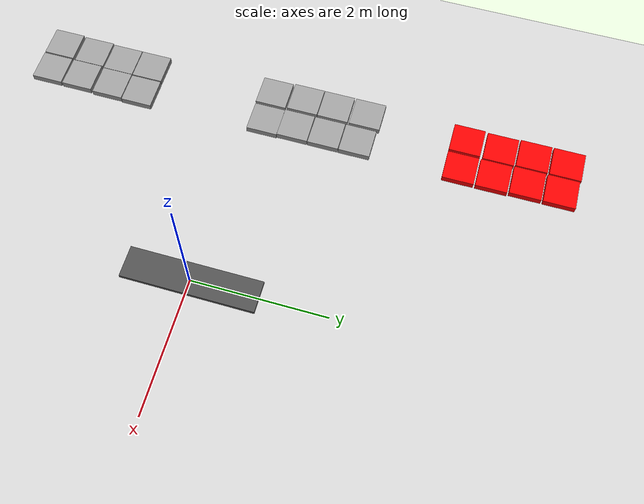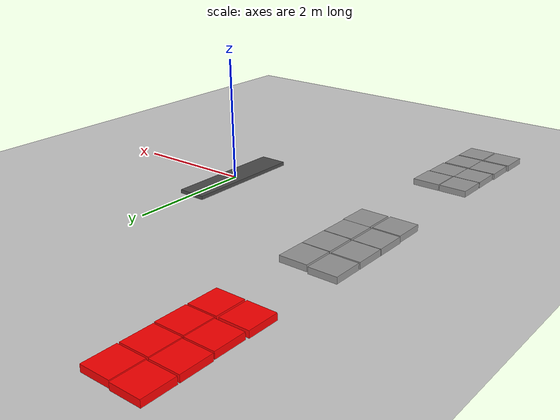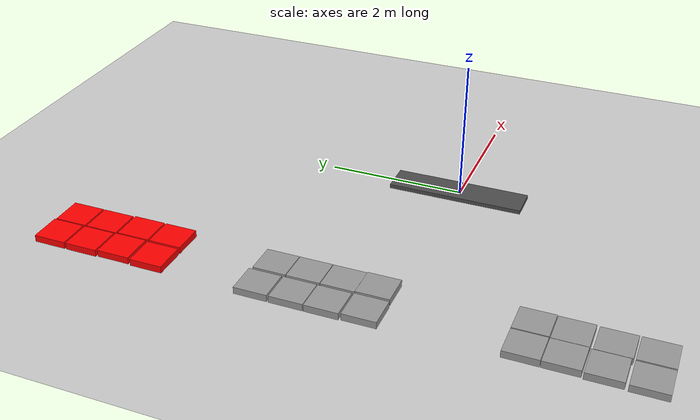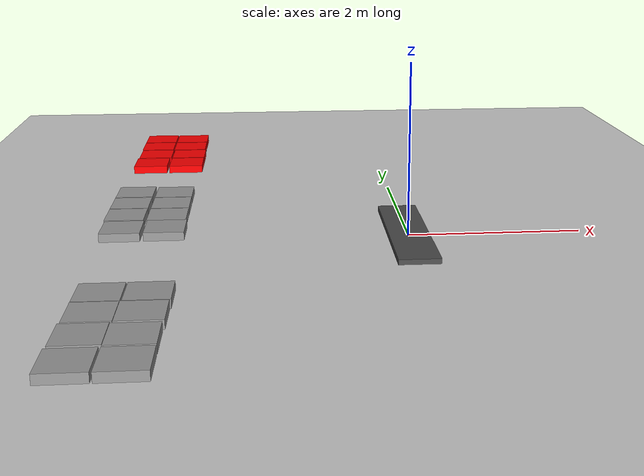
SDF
<sdf version="1.6">
 <world name="default">
  <light name="sun" type="directional">
   <pose>0 0 10 0 -0 0</pose>
   <diffuse>0.8 0.8 0.8 1</diffuse>
   <specular>0.1 0.1 0.1 1</specular>
   <attenuation>
    <range>1000</range>
    <constant>0.9</constant>
    <linear>0.01</linear>
    <quadratic>0.001</quadratic>
   </attenuation>
   <direction>-0.5 0.5 -1</direction>
  </light>
  <model name="ground_plane">
   <static>1</static>
   <link name="link">
    <collision name="collision">
     <geometry><plane><normal>0 0 1</normal><size>100 100</size></plane></geometry>
     <surface><friction><ode><mu>100</mu><mu2>50</mu2></ode></friction></surface>
    </collision>
    <visual name="visual">
     <cast_shadows>0</cast_shadows>
     <geometry><plane><normal>0 0 1</normal><size>100 100</size></plane></geometry>
     <material>
      <script><uri>file://media/materials/scripts/gazebo.material</uri><name>Gazebo/Grey</name></script>
     </material>
    </visual>
   </link>
  </model>
  <gravity>0 0 -9.8</gravity>
  <magnetic_field>6e-06 2.3e-05 -4.2e-05</magnetic_field>
  <atmosphere type="adiabatic"/>
  <physics name="default_physics" default="0" type="ode">
   <max_step_size>0.001</max_step_size>
   <real_time_factor>1</real_time_factor>
   <real_time_update_rate>1000</real_time_update_rate>
  </physics>
  <scene><ambient>0.4 0.4 0.4 1</ambient><background>0.7 0.7 0.7 1</background><shadows>1</shadows></scene>
  <spherical_coordinates>
   <surface_model>EARTH_WGS84</surface_model>
   <latitude_deg>0</latitude_deg>
   <longitude_deg>0</longitude_deg>
   <elevation>0</elevation>
   <heading_deg>0</heading_deg>
  </spherical_coordinates>
  <model name="unit_box_2_0">
   <link name="link">
    <inertial>
     <mass>1</mass>
     <inertia>
      <ixx>0.166667</ixx>
      <ixy>0</ixy>
      <ixz>0</ixz>
      <iyy>0.166667</iyy>
      <iyz>0</iyz>
      <izz>0.166667</izz>
     </inertia>
    </inertial>
    <visual name="visual">
     <geometry><box><size>0.459441 0.470843 0.100133</size></box></geometry>
     <material>
      <script><name>Gazebo/Grey</name><uri>file://media/materials/scripts/gazebo.material</uri></script>
      <ambient>0 0 0 1</ambient>
      <diffuse>0 0 0 1</diffuse>
      <specular>0 0 0 1</specular>
      <emissive>0 0 0 1</emissive>
      <shader type="vertex"><normal_map>__default__</normal_map></shader>
     </material>
    </visual>
    <collision name="collision">
     <geometry><box><size>0.459441 0.470843 0.100133</size></box></geometry>
     <surface>
      <friction>
       <ode><mu>1</mu><mu2>1</mu2><fdir1>0 0 0</fdir1><slip1>0</slip1><slip2>0</slip2></ode>
       <torsional>
        <coefficient>1</coefficient>
        <patch_radius>0</patch_radius>
        <surface_radius>0</surface_radius>
        <use_patch_radius>1</use_patch_radius>
        <ode><slip>0</slip></ode>
       </torsional>
      </friction>
      <bounce><restitution_coefficient>0</restitution_coefficient><threshold>1e+06</threshold></bounce>
      <contact>
       <collide_without_contact>0</collide_without_contact>
       <collide_without_contact_bitmask>1</collide_without_contact_bitmask>
       <collide_bitmask>1</collide_bitmask>
       <ode>
        <soft_cfm>0</soft_cfm>
        <soft_erp>0.2</soft_erp>
        <kp>1e+13</kp>
        <kd>1</kd>
        <max_vel>0.01</max_vel>
        <min_depth>0</min_depth>
       </ode>
       <bullet>
        <split_impulse>1</split_impulse>
        <split_impulse_penetration_threshold>-0.01</split_impulse_penetration_threshold>
        <soft_cfm>0</soft_cfm>
        <soft_erp>0.2</soft_erp>
        <kp>1e+13</kp>
        <kd>1</kd>
       </bullet>
      </contact>
     </surface>
    </collision>
   </link>
   <static>0</static>
   <pose>-2.75989 -1.76543 0.050066 0 -0 0</pose>
  </model>
  <model name="unit_box_2_1">
   <link name="link">
    <inertial>
     <mass>1</mass>
     <inertia>
      <ixx>0.166667</ixx>
      <ixy>0</ixy>
      <ixz>0</ixz>
      <iyy>0.166667</iyy>
      <iyz>0</iyz>
      <izz>0.166667</izz>
     </inertia>
    </inertial>
    <visual name="visual">
     <geometry><box><size>0.459441 0.470843 0.100133</size></box></geometry>
     <material>
      <script><name>Gazebo/Grey</name><uri>file://media/materials/scripts/gazebo.material</uri></script>
      <ambient>0 0 0 1</ambient>
      <diffuse>0 0 0 1</diffuse>
      <specular>0 0 0 1</specular>
      <emissive>0 0 0 1</emissive>
      <shader type="vertex"><normal_map>__default__</normal_map></shader>
     </material>
    </visual>
    <collision name="collision">
     <geometry><box><size>0.459441 0.470843 0.100133</size></box></geometry>
     <surface>
      <friction>
       <ode><mu>1</mu><mu2>1</mu2><fdir1>0 0 0</fdir1><slip1>0</slip1><slip2>0</slip2></ode>
       <torsional>
        <coefficient>1</coefficient>
        <patch_radius>0</patch_radius>
        <surface_radius>0</surface_radius>
        <use_patch_radius>1</use_patch_radius>
        <ode><slip>0</slip></ode>
       </torsional>
      </friction>
      <bounce><restitution_coefficient>0</restitution_coefficient><threshold>1e+06</threshold></bounce>
      <contact>
       <collide_without_contact>0</collide_without_contact>
       <collide_without_contact_bitmask>1</collide_without_contact_bitmask>
       <collide_bitmask>1</collide_bitmask>
       <ode>
        <soft_cfm>0</soft_cfm>
        <soft_erp>0.2</soft_erp>
        <kp>1e+13</kp>
        <kd>1</kd>
        <max_vel>0.01</max_vel>
        <min_depth>0</min_depth>
       </ode>
       <bullet>
        <split_impulse>1</split_impulse>
        <split_impulse_penetration_threshold>-0.01</split_impulse_penetration_threshold>
        <soft_cfm>0</soft_cfm>
        <soft_erp>0.2</soft_erp>
        <kp>1e+13</kp>
        <kd>1</kd>
       </bullet>
      </contact>
     </surface>
    </collision>
   </link>
   <static>0</static>
   <pose>-2.77255 -2.24823 0.050066 0 -0 0</pose>
  </model>
  <model name="unit_box_2_2">
   <link name="link">
    <inertial>
     <mass>1</mass>
     <inertia>
      <ixx>0.166667</ixx>
      <ixy>0</ixy>
      <ixz>0</ixz>
      <iyy>0.166667</iyy>
      <iyz>0</iyz>
      <izz>0.166667</izz>
     </inertia>
    </inertial>
    <visual name="visual">
     <geometry><box><size>0.459441 0.470843 0.100133</size></box></geometry>
     <material>
      <script><name>Gazebo/Grey</name><uri>file://media/materials/scripts/gazebo.material</uri></script>
      <ambient>0 0 0 1</ambient>
      <diffuse>0 0 0 1</diffuse>
      <specular>0 0 0 1</specular>
      <emissive>0 0 0 1</emissive>
      <shader type="vertex"><normal_map>__default__</normal_map></shader>
     </material>
    </visual>
    <collision name="collision">
     <geometry><box><size>0.459441 0.470843 0.100133</size></box></geometry>
     <surface>
      <friction>
       <ode><mu>1</mu><mu2>1</mu2><fdir1>0 0 0</fdir1><slip1>0</slip1><slip2>0</slip2></ode>
       <torsional>
        <coefficient>1</coefficient>
        <patch_radius>0</patch_radius>
        <surface_radius>0</surface_radius>
        <use_patch_radius>1</use_patch_radius>
        <ode><slip>0</slip></ode>
       </torsional>
      </friction>
      <bounce><restitution_coefficient>0</restitution_coefficient><threshold>1e+06</threshold></bounce>
      <contact>
       <collide_without_contact>0</collide_without_contact>
       <collide_without_contact_bitmask>1</collide_without_contact_bitmask>
       <collide_bitmask>1</collide_bitmask>
       <ode>
        <soft_cfm>0</soft_cfm>
        <soft_erp>0.2</soft_erp>
        <kp>1e+13</kp>
        <kd>1</kd>
        <max_vel>0.01</max_vel>
        <min_depth>0</min_depth>
       </ode>
       <bullet>
        <split_impulse>1</split_impulse>
        <split_impulse_penetration_threshold>-0.01</split_impulse_penetration_threshold>
        <soft_cfm>0</soft_cfm>
        <soft_erp>0.2</soft_erp>
        <kp>1e+13</kp>
        <kd>1</kd>
       </bullet>
      </contact>
     </surface>
    </collision>
   </link>
   <static>0</static>
   <pose>-2.78916 -2.75879 0.050066 0 -0 0</pose>
  </model>
  <model name="unit_box_2_3">
   <link name="link">
    <inertial>
     <mass>1</mass>
     <inertia>
      <ixx>0.166667</ixx>
      <ixy>0</ixy>
      <ixz>0</ixz>
      <iyy>0.166667</iyy>
      <iyz>0</iyz>
      <izz>0.166667</izz>
     </inertia>
    </inertial>
    <visual name="visual">
     <geometry><box><size>0.459441 0.470843 0.100133</size></box></geometry>
     <material>
      <script><name>Gazebo/Grey</name><uri>file://media/materials/scripts/gazebo.material</uri></script>
      <ambient>0 0 0 1</ambient>
      <diffuse>0 0 0 1</diffuse>
      <specular>0 0 0 1</specular>
      <emissive>0 0 0 1</emissive>
      <shader type="vertex"><normal_map>__default__</normal_map></shader>
     </material>
    </visual>
    <collision name="collision">
     <geometry><box><size>0.459441 0.470843 0.100133</size></box></geometry>
     <surface>
      <friction>
       <ode><mu>1</mu><mu2>1</mu2><fdir1>0 0 0</fdir1><slip1>0</slip1><slip2>0</slip2></ode>
       <torsional>
        <coefficient>1</coefficient>
        <patch_radius>0</patch_radius>
        <surface_radius>0</surface_radius>
        <use_patch_radius>1</use_patch_radius>
        <ode><slip>0</slip></ode>
       </torsional>
      </friction>
      <bounce><restitution_coefficient>0</restitution_coefficient><threshold>1e+06</threshold></bounce>
      <contact>
       <collide_without_contact>0</collide_without_contact>
       <collide_without_contact_bitmask>1</collide_without_contact_bitmask>
       <collide_bitmask>1</collide_bitmask>
       <ode>
        <soft_cfm>0</soft_cfm>
        <soft_erp>0.2</soft_erp>
        <kp>1e+13</kp>
        <kd>1</kd>
        <max_vel>0.01</max_vel>
        <min_depth>0</min_depth>
       </ode>
       <bullet>
        <split_impulse>1</split_impulse>
        <split_impulse_penetration_threshold>-0.01</split_impulse_penetration_threshold>
        <soft_cfm>0</soft_cfm>
        <soft_erp>0.2</soft_erp>
        <kp>1e+13</kp>
        <kd>1</kd>
       </bullet>
      </contact>
     </surface>
    </collision>
   </link>
   <static>0</static>
   <pose>-2.79065 -3.25421 0.050066 0 -0 0</pose>
  </model>
  <model name="unit_box_2_4">
   <link name="link">
    <inertial>
     <mass>1</mass>
     <inertia>
      <ixx>0.166667</ixx>
      <ixy>0</ixy>
      <ixz>0</ixz>
      <iyy>0.166667</iyy>
      <iyz>0</iyz>
      <izz>0.166667</izz>
     </inertia>
    </inertial>
    <visual name="visual">
     <geometry><box><size>0.459441 0.470843 0.100133</size></box></geometry>
     <material>
      <script><name>Gazebo/Grey</name><uri>file://media/materials/scripts/gazebo.material</uri></script>
      <ambient>0 0 0 1</ambient>
      <diffuse>0 0 0 1</diffuse>
      <specular>0 0 0 1</specular>
      <emissive>0 0 0 1</emissive>
      <shader type="vertex"><normal_map>__default__</normal_map></shader>
     </material>
    </visual>
    <collision name="collision">
     <geometry><box><size>0.459441 0.470843 0.100133</size></box></geometry>
     <surface>
      <friction>
       <ode><mu>1</mu><mu2>1</mu2><fdir1>0 0 0</fdir1><slip1>0</slip1><slip2>0</slip2></ode>
       <torsional>
        <coefficient>1</coefficient>
        <patch_radius>0</patch_radius>
        <surface_radius>0</surface_radius>
        <use_patch_radius>1</use_patch_radius>
        <ode><slip>0</slip></ode>
       </torsional>
      </friction>
      <bounce><restitution_coefficient>0</restitution_coefficient><threshold>1e+06</threshold></bounce>
      <contact>
       <collide_without_contact>0</collide_without_contact>
       <collide_without_contact_bitmask>1</collide_without_contact_bitmask>
       <collide_bitmask>1</collide_bitmask>
       <ode>
        <soft_cfm>0</soft_cfm>
        <soft_erp>0.2</soft_erp>
        <kp>1e+13</kp>
        <kd>1</kd>
        <max_vel>0.01</max_vel>
        <min_depth>0</min_depth>
       </ode>
       <bullet>
        <split_impulse>1</split_impulse>
        <split_impulse_penetration_threshold>-0.01</split_impulse_penetration_threshold>
        <soft_cfm>0</soft_cfm>
        <soft_erp>0.2</soft_erp>
        <kp>1e+13</kp>
        <kd>1</kd>
       </bullet>
      </contact>
     </surface>
    </collision>
   </link>
   <static>0</static>
   <pose>-3.23473 -1.76667 0.050066 0 -0 0.000221</pose>
  </model>
  <model name="unit_box_2_5">
   <link name="link">
    <inertial>
     <mass>1</mass>
     <inertia>
      <ixx>0.166667</ixx>
      <ixy>0</ixy>
      <ixz>0</ixz>
      <iyy>0.166667</iyy>
      <iyz>0</iyz>
      <izz>0.166667</izz>
     </inertia>
    </inertial>
    <visual name="visual">
     <geometry><box><size>0.459441 0.470843 0.100133</size></box></geometry>
     <material>
      <script><name>Gazebo/Grey</name><uri>file://media/materials/scripts/gazebo.material</uri></script>
      <ambient>0 0 0 1</ambient>
      <diffuse>0 0 0 1</diffuse>
      <specular>0 0 0 1</specular>
      <emissive>0 0 0 1</emissive>
      <shader type="vertex"><normal_map>__default__</normal_map></shader>
     </material>
    </visual>
    <collision name="collision">
     <geometry><box><size>0.459441 0.470843 0.100133</size></box></geometry>
     <surface>
      <friction>
       <ode><mu>1</mu><mu2>1</mu2><fdir1>0 0 0</fdir1><slip1>0</slip1><slip2>0</slip2></ode>
       <torsional>
        <coefficient>1</coefficient>
        <patch_radius>0</patch_radius>
        <surface_radius>0</surface_radius>
        <use_patch_radius>1</use_patch_radius>
        <ode><slip>0</slip></ode>
       </torsional>
      </friction>
      <bounce><restitution_coefficient>0</restitution_coefficient><threshold>1e+06</threshold></bounce>
      <contact>
       <collide_without_contact>0</collide_without_contact>
       <collide_without_contact_bitmask>1</collide_without_contact_bitmask>
       <collide_bitmask>1</collide_bitmask>
       <ode>
        <soft_cfm>0</soft_cfm>
        <soft_erp>0.2</soft_erp>
        <kp>1e+13</kp>
        <kd>1</kd>
        <max_vel>0.01</max_vel>
        <min_depth>0</min_depth>
       </ode>
       <bullet>
        <split_impulse>1</split_impulse>
        <split_impulse_penetration_threshold>-0.01</split_impulse_penetration_threshold>
        <soft_cfm>0</soft_cfm>
        <soft_erp>0.2</soft_erp>
        <kp>1e+13</kp>
        <kd>1</kd>
       </bullet>
      </contact>
     </surface>
    </collision>
   </link>
   <static>0</static>
   <pose>-3.2362 -2.24737 0.050066 0 -0 0.000134</pose>
  </model>
  <model name="unit_box_2_6">
   <link name="link">
    <inertial>
     <mass>1</mass>
     <inertia>
      <ixx>0.166667</ixx>
      <ixy>0</ixy>
      <ixz>0</ixz>
      <iyy>0.166667</iyy>
      <iyz>0</iyz>
      <izz>0.166667</izz>
     </inertia>
    </inertial>
    <visual name="visual">
     <geometry><box><size>0.459441 0.470843 0.100133</size></box></geometry>
     <material>
      <script><name>Gazebo/Grey</name><uri>file://media/materials/scripts/gazebo.material</uri></script>
      <ambient>0 0 0 1</ambient>
      <diffuse>0 0 0 1</diffuse>
      <specular>0 0 0 1</specular>
      <emissive>0 0 0 1</emissive>
      <shader type="vertex"><normal_map>__default__</normal_map></shader>
     </material>
    </visual>
    <collision name="collision">
     <geometry><box><size>0.459441 0.470843 0.100133</size></box></geometry>
     <surface>
      <friction>
       <ode><mu>1</mu><mu2>1</mu2><fdir1>0 0 0</fdir1><slip1>0</slip1><slip2>0</slip2></ode>
       <torsional>
        <coefficient>1</coefficient>
        <patch_radius>0</patch_radius>
        <surface_radius>0</surface_radius>
        <use_patch_radius>1</use_patch_radius>
        <ode><slip>0</slip></ode>
       </torsional>
      </friction>
      <bounce><restitution_coefficient>0</restitution_coefficient><threshold>1e+06</threshold></bounce>
      <contact>
       <collide_without_contact>0</collide_without_contact>
       <collide_without_contact_bitmask>1</collide_without_contact_bitmask>
       <collide_bitmask>1</collide_bitmask>
       <ode>
        <soft_cfm>0</soft_cfm>
        <soft_erp>0.2</soft_erp>
        <kp>1e+13</kp>
        <kd>1</kd>
        <max_vel>0.01</max_vel>
        <min_depth>0</min_depth>
       </ode>
       <bullet>
        <split_impulse>1</split_impulse>
        <split_impulse_penetration_threshold>-0.01</split_impulse_penetration_threshold>
        <soft_cfm>0</soft_cfm>
        <soft_erp>0.2</soft_erp>
        <kp>1e+13</kp>
        <kd>1</kd>
       </bullet>
      </contact>
     </surface>
    </collision>
   </link>
   <static>0</static>
   <pose>-3.25344 -2.74162 0.050066 0 -0 0.00331</pose>
  </model>
  <model name="unit_box_2_7">
   <link name="link">
    <inertial>
     <mass>1</mass>
     <inertia>
      <ixx>0.166667</ixx>
      <ixy>0</ixy>
      <ixz>0</ixz>
      <iyy>0.166667</iyy>
      <iyz>0</iyz>
      <izz>0.166667</izz>
     </inertia>
    </inertial>
    <visual name="visual">
     <geometry><box><size>0.459441 0.470843 0.100133</size></box></geometry>
     <material>
      <script><name>Gazebo/Grey</name><uri>file://media/materials/scripts/gazebo.material</uri></script>
      <ambient>0 0 0 1</ambient>
      <diffuse>0 0 0 1</diffuse>
      <specular>0 0 0 1</specular>
      <emissive>0 0 0 1</emissive>
      <shader type="vertex"><normal_map>__default__</normal_map></shader>
     </material>
    </visual>
    <collision name="collision">
     <geometry><box><size>0.459441 0.470843 0.100133</size></box></geometry>
     <surface>
      <friction>
       <ode><mu>1</mu><mu2>1</mu2><fdir1>0 0 0</fdir1><slip1>0</slip1><slip2>0</slip2></ode>
       <torsional>
        <coefficient>1</coefficient>
        <patch_radius>0</patch_radius>
        <surface_radius>0</surface_radius>
        <use_patch_radius>1</use_patch_radius>
        <ode><slip>0</slip></ode>
       </torsional>
      </friction>
      <bounce><restitution_coefficient>0</restitution_coefficient><threshold>1e+06</threshold></bounce>
      <contact>
       <collide_without_contact>0</collide_without_contact>
       <collide_without_contact_bitmask>1</collide_without_contact_bitmask>
       <collide_bitmask>1</collide_bitmask>
       <ode>
        <soft_cfm>0</soft_cfm>
        <soft_erp>0.2</soft_erp>
        <kp>1e+13</kp>
        <kd>1</kd>
        <max_vel>0.01</max_vel>
        <min_depth>0</min_depth>
       </ode>
       <bullet>
        <split_impulse>1</split_impulse>
        <split_impulse_penetration_threshold>-0.01</split_impulse_penetration_threshold>
        <soft_cfm>0</soft_cfm>
        <soft_erp>0.2</soft_erp>
        <kp>1e+13</kp>
        <kd>1</kd>
       </bullet>
      </contact>
     </surface>
    </collision>
   </link>
   <static>0</static>
   <pose>-3.26969 -3.25312 0.050066 0 0 -0.000981</pose>
  </model>
  <model name="unit_box_1">
   <link name="link">
    <inertial>
     <mass>1</mass>
     <inertia>
      <ixx>0.166667</ixx>
      <ixy>0</ixy>
      <ixz>0</ixz>
      <iyy>0.166667</iyy>
      <iyz>0</iyz>
      <izz>0.166667</izz>
     </inertia>
    </inertial>
    <visual name="visual">
     <geometry><box><size>0.459441 0.470843 0.100133</size></box></geometry>
     <material>
      <script><name>Gazebo/Grey</name><uri>file://media/materials/scripts/gazebo.material</uri></script>
      <ambient>1 1 1 1</ambient>
      <diffuse>1 1 1 1</diffuse>
      <specular>1 1 1 1</specular>
      <emissive>0 0 0 1</emissive>
      <shader type="vertex"><normal_map>__default__</normal_map></shader>
     </material>
    </visual>
    <collision name="collision">
     <geometry><box><size>0.459441 0.470843 0.100133</size></box></geometry>
     <surface>
      <friction>
       <ode><mu>1</mu><mu2>1</mu2><fdir1>0 0 0</fdir1><slip1>0</slip1><slip2>0</slip2></ode>
       <torsional>
        <coefficient>1</coefficient>
        <patch_radius>0</patch_radius>
        <surface_radius>0</surface_radius>
        <use_patch_radius>1</use_patch_radius>
        <ode><slip>0</slip></ode>
       </torsional>
      </friction>
      <bounce><restitution_coefficient>0</restitution_coefficient><threshold>1e+06</threshold></bounce>
      <contact>
       <collide_without_contact>0</collide_without_contact>
       <collide_without_contact_bitmask>1</collide_without_contact_bitmask>
       <collide_bitmask>1</collide_bitmask>
       <ode>
        <soft_cfm>0</soft_cfm>
        <soft_erp>0.2</soft_erp>
        <kp>1e+13</kp>
        <kd>1</kd>
        <max_vel>0.01</max_vel>
        <min_depth>0</min_depth>
       </ode>
       <bullet>
        <split_impulse>1</split_impulse>
        <split_impulse_penetration_threshold>-0.01</split_impulse_penetration_threshold>
        <soft_cfm>0</soft_cfm>
        <soft_erp>0.2</soft_erp>
        <kp>1e+13</kp>
        <kd>1</kd>
       </bullet>
      </contact>
     </surface>
    </collision>
   </link>
   <static>0</static>
   <pose>-2.79507 0.241122 0.050066 0 -0 0</pose>
  </model>
  <model name="unit_box_1_0">
   <link name="link">
    <inertial>
     <mass>1</mass>
     <inertia>
      <ixx>0.166667</ixx>
      <ixy>0</ixy>
      <ixz>0</ixz>
      <iyy>0.166667</iyy>
      <iyz>0</iyz>
      <izz>0.166667</izz>
     </inertia>
    </inertial>
    <visual name="visual">
     <geometry><box><size>0.459441 0.470843 0.100133</size></box></geometry>
     <material>
      <script><name>Gazebo/Grey</name><uri>file://media/materials/scripts/gazebo.material</uri></script>
      <ambient>1 1 1 1</ambient>
      <diffuse>1 1 1 1</diffuse>
      <specular>1 1 1 1</specular>
      <emissive>0 0 0 1</emissive>
      <shader type="vertex"><normal_map>__default__</normal_map></shader>
     </material>
    </visual>
    <collision name="collision">
     <geometry><box><size>0.459441 0.470843 0.100133</size></box></geometry>
     <surface>
      <friction>
       <ode><mu>1</mu><mu2>1</mu2><fdir1>0 0 0</fdir1><slip1>0</slip1><slip2>0</slip2></ode>
       <torsional>
        <coefficient>1</coefficient>
        <patch_radius>0</patch_radius>
        <surface_radius>0</surface_radius>
        <use_patch_radius>1</use_patch_radius>
        <ode><slip>0</slip></ode>
       </torsional>
      </friction>
      <bounce><restitution_coefficient>0</restitution_coefficient><threshold>1e+06</threshold></bounce>
      <contact>
       <collide_without_contact>0</collide_without_contact>
       <collide_without_contact_bitmask>1</collide_without_contact_bitmask>
       <collide_bitmask>1</collide_bitmask>
       <ode>
        <soft_cfm>0</soft_cfm>
        <soft_erp>0.2</soft_erp>
        <kp>1e+13</kp>
        <kd>1</kd>
        <max_vel>0.01</max_vel>
        <min_depth>0</min_depth>
       </ode>
       <bullet>
        <split_impulse>1</split_impulse>
        <split_impulse_penetration_threshold>-0.01</split_impulse_penetration_threshold>
        <soft_cfm>0</soft_cfm>
        <soft_erp>0.2</soft_erp>
        <kp>1e+13</kp>
        <kd>1</kd>
       </bullet>
      </contact>
     </surface>
    </collision>
   </link>
   <static>0</static>
   <pose>-2.80869 0.712243 0.050066 0 -0 0</pose>
  </model>
  <model name="unit_box_1_1">
   <link name="link">
    <inertial>
     <mass>1</mass>
     <inertia>
      <ixx>0.166667</ixx>
      <ixy>0</ixy>
      <ixz>0</ixz>
      <iyy>0.166667</iyy>
      <iyz>0</iyz>
      <izz>0.166667</izz>
     </inertia>
    </inertial>
    <visual name="visual">
     <geometry><box><size>0.459441 0.470843 0.100133</size></box></geometry>
     <material>
      <script><name>Gazebo/Grey</name><uri>file://media/materials/scripts/gazebo.material</uri></script>
      <ambient>1 1 1 1</ambient>
      <diffuse>1 1 1 1</diffuse>
      <specular>1 1 1 1</specular>
      <emissive>0 0 0 1</emissive>
      <shader type="vertex"><normal_map>__default__</normal_map></shader>
     </material>
    </visual>
    <collision name="collision">
     <geometry><box><size>0.459441 0.470843 0.100133</size></box></geometry>
     <surface>
      <friction>
       <ode><mu>1</mu><mu2>1</mu2><fdir1>0 0 0</fdir1><slip1>0</slip1><slip2>0</slip2></ode>
       <torsional>
        <coefficient>1</coefficient>
        <patch_radius>0</patch_radius>
        <surface_radius>0</surface_radius>
        <use_patch_radius>1</use_patch_radius>
        <ode><slip>0</slip></ode>
       </torsional>
      </friction>
      <bounce><restitution_coefficient>0</restitution_coefficient><threshold>1e+06</threshold></bounce>
      <contact>
       <collide_without_contact>0</collide_without_contact>
       <collide_without_contact_bitmask>1</collide_without_contact_bitmask>
       <collide_bitmask>1</collide_bitmask>
       <ode>
        <soft_cfm>0</soft_cfm>
        <soft_erp>0.2</soft_erp>
        <kp>1e+13</kp>
        <kd>1</kd>
        <max_vel>0.01</max_vel>
        <min_depth>0</min_depth>
       </ode>
       <bullet>
        <split_impulse>1</split_impulse>
        <split_impulse_penetration_threshold>-0.01</split_impulse_penetration_threshold>
        <soft_cfm>0</soft_cfm>
        <soft_erp>0.2</soft_erp>
        <kp>1e+13</kp>
        <kd>1</kd>
       </bullet>
      </contact>
     </surface>
    </collision>
   </link>
   <static>0</static>
   <pose>-2.80725 1.19345 0.050066 0 -0 0</pose>
  </model>
  <model name="unit_box_1_2">
   <link name="link">
    <inertial>
     <mass>1</mass>
     <inertia>
      <ixx>0.166667</ixx>
      <ixy>0</ixy>
      <ixz>0</ixz>
      <iyy>0.166667</iyy>
      <iyz>0</iyz>
      <izz>0.166667</izz>
     </inertia>
    </inertial>
    <visual name="visual">
     <geometry><box><size>0.459441 0.470843 0.100133</size></box></geometry>
     <material>
      <script><name>Gazebo/Grey</name><uri>file://media/materials/scripts/gazebo.material</uri></script>
      <ambient>1 1 1 1</ambient>
      <diffuse>1 1 1 1</diffuse>
      <specular>1 1 1 1</specular>
      <emissive>0 0 0 1</emissive>
      <shader type="vertex"><normal_map>__default__</normal_map></shader>
     </material>
    </visual>
    <collision name="collision">
     <geometry><box><size>0.459441 0.470843 0.100133</size></box></geometry>
     <surface>
      <friction>
       <ode><mu>1</mu><mu2>1</mu2><fdir1>0 0 0</fdir1><slip1>0</slip1><slip2>0</slip2></ode>
       <torsional>
        <coefficient>1</coefficient>
        <patch_radius>0</patch_radius>
        <surface_radius>0</surface_radius>
        <use_patch_radius>1</use_patch_radius>
        <ode><slip>0</slip></ode>
       </torsional>
      </friction>
      <bounce><restitution_coefficient>0</restitution_coefficient><threshold>1e+06</threshold></bounce>
      <contact>
       <collide_without_contact>0</collide_without_contact>
       <collide_without_contact_bitmask>1</collide_without_contact_bitmask>
       <collide_bitmask>1</collide_bitmask>
       <ode>
        <soft_cfm>0</soft_cfm>
        <soft_erp>0.2</soft_erp>
        <kp>1e+13</kp>
        <kd>1</kd>
        <max_vel>0.01</max_vel>
        <min_depth>0</min_depth>
       </ode>
       <bullet>
        <split_impulse>1</split_impulse>
        <split_impulse_penetration_threshold>-0.01</split_impulse_penetration_threshold>
        <soft_cfm>0</soft_cfm>
        <soft_erp>0.2</soft_erp>
        <kp>1e+13</kp>
        <kd>1</kd>
       </bullet>
      </contact>
     </surface>
    </collision>
   </link>
   <static>0</static>
   <pose>-2.80581 1.67476 0.050066 0 -0 0</pose>
  </model>
  <model name="unit_box_1_3">
   <link name="link">
    <inertial>
     <mass>1</mass>
     <inertia>
      <ixx>0.166667</ixx>
      <ixy>0</ixy>
      <ixz>0</ixz>
      <iyy>0.166667</iyy>
      <iyz>0</iyz>
      <izz>0.166667</izz>
     </inertia>
    </inertial>
    <visual name="visual">
     <geometry><box><size>0.459441 0.470843 0.100133</size></box></geometry>
     <material>
      <script><name>Gazebo/Grey</name><uri>file://media/materials/scripts/gazebo.material</uri></script>
      <ambient>1 1 1 1</ambient>
      <diffuse>1 1 1 1</diffuse>
      <specular>1 1 1 1</specular>
      <emissive>0 0 0 1</emissive>
      <shader type="vertex"><normal_map>__default__</normal_map></shader>
     </material>
    </visual>
    <collision name="collision">
     <geometry><box><size>0.459441 0.470843 0.100133</size></box></geometry>
     <surface>
      <friction>
       <ode><mu>1</mu><mu2>1</mu2><fdir1>0 0 0</fdir1><slip1>0</slip1><slip2>0</slip2></ode>
       <torsional>
        <coefficient>1</coefficient>
        <patch_radius>0</patch_radius>
        <surface_radius>0</surface_radius>
        <use_patch_radius>1</use_patch_radius>
        <ode><slip>0</slip></ode>
       </torsional>
      </friction>
      <bounce><restitution_coefficient>0</restitution_coefficient><threshold>1e+06</threshold></bounce>
      <contact>
       <collide_without_contact>0</collide_without_contact>
       <collide_without_contact_bitmask>1</collide_without_contact_bitmask>
       <collide_bitmask>1</collide_bitmask>
       <ode>
        <soft_cfm>0</soft_cfm>
        <soft_erp>0.2</soft_erp>
        <kp>1e+13</kp>
        <kd>1</kd>
        <max_vel>0.01</max_vel>
        <min_depth>0</min_depth>
       </ode>
       <bullet>
        <split_impulse>1</split_impulse>
        <split_impulse_penetration_threshold>-0.01</split_impulse_penetration_threshold>
        <soft_cfm>0</soft_cfm>
        <soft_erp>0.2</soft_erp>
        <kp>1e+13</kp>
        <kd>1</kd>
       </bullet>
      </contact>
     </surface>
    </collision>
   </link>
   <static>0</static>
   <pose>-3.29205 0.23263 0.050066 0 -0 0</pose>
  </model>
  <model name="unit_box_1_4">
   <link name="link">
    <inertial>
     <mass>1</mass>
     <inertia>
      <ixx>0.166667</ixx>
      <ixy>0</ixy>
      <ixz>0</ixz>
      <iyy>0.166667</iyy>
      <iyz>0</iyz>
      <izz>0.166667</izz>
     </inertia>
    </inertial>
    <visual name="visual">
     <geometry><box><size>0.459441 0.470843 0.100133</size></box></geometry>
     <material>
      <script><name>Gazebo/Grey</name><uri>file://media/materials/scripts/gazebo.material</uri></script>
      <ambient>1 1 1 1</ambient>
      <diffuse>1 1 1 1</diffuse>
      <specular>1 1 1 1</specular>
      <emissive>0 0 0 1</emissive>
      <shader type="vertex"><normal_map>__default__</normal_map></shader>
     </material>
    </visual>
    <collision name="collision">
     <geometry><box><size>0.459441 0.470843 0.100133</size></box></geometry>
     <surface>
      <friction>
       <ode><mu>1</mu><mu2>1</mu2><fdir1>0 0 0</fdir1><slip1>0</slip1><slip2>0</slip2></ode>
       <torsional>
        <coefficient>1</coefficient>
        <patch_radius>0</patch_radius>
        <surface_radius>0</surface_radius>
        <use_patch_radius>1</use_patch_radius>
        <ode><slip>0</slip></ode>
       </torsional>
      </friction>
      <bounce><restitution_coefficient>0</restitution_coefficient><threshold>1e+06</threshold></bounce>
      <contact>
       <collide_without_contact>0</collide_without_contact>
       <collide_without_contact_bitmask>1</collide_without_contact_bitmask>
       <collide_bitmask>1</collide_bitmask>
       <ode>
        <soft_cfm>0</soft_cfm>
        <soft_erp>0.2</soft_erp>
        <kp>1e+13</kp>
        <kd>1</kd>
        <max_vel>0.01</max_vel>
        <min_depth>0</min_depth>
       </ode>
       <bullet>
        <split_impulse>1</split_impulse>
        <split_impulse_penetration_threshold>-0.01</split_impulse_penetration_threshold>
        <soft_cfm>0</soft_cfm>
        <soft_erp>0.2</soft_erp>
        <kp>1e+13</kp>
        <kd>1</kd>
       </bullet>
      </contact>
     </surface>
    </collision>
   </link>
   <static>0</static>
   <pose>-3.30568 0.728957 0.050066 0 -0 0</pose>
  </model>
  <model name="unit_box_1_5">
   <link name="link">
    <inertial>
     <mass>1</mass>
     <inertia>
      <ixx>0.166667</ixx>
      <ixy>0</ixy>
      <ixz>0</ixz>
      <iyy>0.166667</iyy>
      <iyz>0</iyz>
      <izz>0.166667</izz>
     </inertia>
    </inertial>
    <visual name="visual">
     <geometry><box><size>0.459441 0.470843 0.100133</size></box></geometry>
     <material>
      <script><name>Gazebo/Grey</name><uri>file://media/materials/scripts/gazebo.material</uri></script>
      <ambient>1 1 1 1</ambient>
      <diffuse>1 1 1 1</diffuse>
      <specular>1 1 1 1</specular>
      <emissive>0 0 0 1</emissive>
      <shader type="vertex"><normal_map>__default__</normal_map></shader>
     </material>
    </visual>
    <collision name="collision">
     <geometry><box><size>0.459441 0.470843 0.100133</size></box></geometry>
     <surface>
      <friction>
       <ode><mu>1</mu><mu2>1</mu2><fdir1>0 0 0</fdir1><slip1>0</slip1><slip2>0</slip2></ode>
       <torsional>
        <coefficient>1</coefficient>
        <patch_radius>0</patch_radius>
        <surface_radius>0</surface_radius>
        <use_patch_radius>1</use_patch_radius>
        <ode><slip>0</slip></ode>
       </torsional>
      </friction>
      <bounce><restitution_coefficient>0</restitution_coefficient><threshold>1e+06</threshold></bounce>
      <contact>
       <collide_without_contact>0</collide_without_contact>
       <collide_without_contact_bitmask>1</collide_without_contact_bitmask>
       <collide_bitmask>1</collide_bitmask>
       <ode>
        <soft_cfm>0</soft_cfm>
        <soft_erp>0.2</soft_erp>
        <kp>1e+13</kp>
        <kd>1</kd>
        <max_vel>0.01</max_vel>
        <min_depth>0</min_depth>
       </ode>
       <bullet>
        <split_impulse>1</split_impulse>
        <split_impulse_penetration_threshold>-0.01</split_impulse_penetration_threshold>
        <soft_cfm>0</soft_cfm>
        <soft_erp>0.2</soft_erp>
        <kp>1e+13</kp>
        <kd>1</kd>
       </bullet>
      </contact>
     </surface>
    </collision>
   </link>
   <static>0</static>
   <pose>-3.30426 1.2103 0.050066 0 -0 0</pose>
  </model>
  <model name="unit_box_1_6">
   <link name="link">
    <inertial>
     <mass>1</mass>
     <inertia>
      <ixx>0.166667</ixx>
      <ixy>0</ixy>
      <ixz>0</ixz>
      <iyy>0.166667</iyy>
      <iyz>0</iyz>
      <izz>0.166667</izz>
     </inertia>
    </inertial>
    <visual name="visual">
     <geometry><box><size>0.459441 0.470843 0.100133</size></box></geometry>
     <material>
      <script><name>Gazebo/Grey</name><uri>file://media/materials/scripts/gazebo.material</uri></script>
      <ambient>1 1 1 1</ambient>
      <diffuse>1 1 1 1</diffuse>
      <specular>1 1 1 1</specular>
      <emissive>0 0 0 1</emissive>
      <shader type="vertex"><normal_map>__default__</normal_map></shader>
     </material>
    </visual>
    <collision name="collision">
     <geometry><box><size>0.459441 0.470843 0.100133</size></box></geometry>
     <surface>
      <friction>
       <ode><mu>1</mu><mu2>1</mu2><fdir1>0 0 0</fdir1><slip1>0</slip1><slip2>0</slip2></ode>
       <torsional>
        <coefficient>1</coefficient>
        <patch_radius>0</patch_radius>
        <surface_radius>0</surface_radius>
        <use_patch_radius>1</use_patch_radius>
        <ode><slip>0</slip></ode>
       </torsional>
      </friction>
      <bounce><restitution_coefficient>0</restitution_coefficient><threshold>1e+06</threshold></bounce>
      <contact>
       <collide_without_contact>0</collide_without_contact>
       <collide_without_contact_bitmask>1</collide_without_contact_bitmask>
       <collide_bitmask>1</collide_bitmask>
       <ode>
        <soft_cfm>0</soft_cfm>
        <soft_erp>0.2</soft_erp>
        <kp>1e+13</kp>
        <kd>1</kd>
        <max_vel>0.01</max_vel>
        <min_depth>0</min_depth>
       </ode>
       <bullet>
        <split_impulse>1</split_impulse>
        <split_impulse_penetration_threshold>-0.01</split_impulse_penetration_threshold>
        <soft_cfm>0</soft_cfm>
        <soft_erp>0.2</soft_erp>
        <kp>1e+13</kp>
        <kd>1</kd>
       </bullet>
      </contact>
     </surface>
    </collision>
   </link>
   <static>0</static>
   <pose>-3.30281 1.70676 0.050066 0 -0 0</pose>
  </model>
  <model name="unit_box_0">
   <link name="link">
    <inertial>
     <mass>1</mass>
     <inertia>
      <ixx>0.166667</ixx>
      <ixy>0</ixy>
      <ixz>0</ixz>
      <iyy>0.166667</iyy>
      <iyz>0</iyz>
      <izz>0.166667</izz>
     </inertia>
    </inertial>
    <visual name="visual">
     <geometry><box><size>0.459441 0.470843 0.100133</size></box></geometry>
     <material>
      <script><name>Gazebo/Grey</name><uri>file://media/materials/scripts/gazebo.material</uri></script>
      <ambient>1 0 0 1</ambient>
      <diffuse>1 0 0 1</diffuse>
      <specular>1 0 0 1</specular>
      <emissive>0 0 0 1</emissive>
      <shader type="vertex"><normal_map>__default__</normal_map></shader>
     </material>
    </visual>
    <collision name="collision">
     <geometry><box><size>0.459441 0.470843 0.100133</size></box></geometry>
     <surface>
      <friction>
       <ode><mu>1</mu><mu2>1</mu2><fdir1>0 0 0</fdir1><slip1>0</slip1><slip2>0</slip2></ode>
       <torsional>
        <coefficient>1</coefficient>
        <patch_radius>0</patch_radius>
        <surface_radius>0</surface_radius>
        <use_patch_radius>1</use_patch_radius>
        <ode><slip>0</slip></ode>
       </torsional>
      </friction>
      <bounce><restitution_coefficient>0</restitution_coefficient><threshold>1e+06</threshold></bounce>
      <contact>
       <collide_without_contact>0</collide_without_contact>
       <collide_without_contact_bitmask>1</collide_without_contact_bitmask>
       <collide_bitmask>1</collide_bitmask>
       <ode>
        <soft_cfm>0</soft_cfm>
        <soft_erp>0.2</soft_erp>
        <kp>1e+13</kp>
        <kd>1</kd>
        <max_vel>0.01</max_vel>
        <min_depth>0</min_depth>
       </ode>
       <bullet>
        <split_impulse>1</split_impulse>
        <split_impulse_penetration_threshold>-0.01</split_impulse_penetration_threshold>
        <soft_cfm>0</soft_cfm>
        <soft_erp>0.2</soft_erp>
        <kp>1e+13</kp>
        <kd>1</kd>
       </bullet>
      </contact>
     </surface>
    </collision>
   </link>
   <static>0</static>
   <pose>-2.77088 3.25461 0.050066 0 -0 0</pose>
  </model>
  <model name="unit_box_0_0">
   <link name="link">
    <inertial>
     <mass>1</mass>
     <inertia>
      <ixx>0.166667</ixx>
      <ixy>0</ixy>
      <ixz>0</ixz>
      <iyy>0.166667</iyy>
      <iyz>0</iyz>
      <izz>0.166667</izz>
     </inertia>
    </inertial>
    <visual name="visual">
     <geometry><box><size>0.459441 0.470843 0.100133</size></box></geometry>
     <material>
      <script><name>Gazebo/Grey</name><uri>file://media/materials/scripts/gazebo.material</uri></script>
      <ambient>1 0 0 1</ambient>
      <diffuse>1 0 0 1</diffuse>
      <specular>1 0 0 1</specular>
      <emissive>0 0 0 1</emissive>
      <shader type="vertex"><normal_map>__default__</normal_map></shader>
     </material>
    </visual>
    <collision name="collision">
     <geometry><box><size>0.459441 0.470843 0.100133</size></box></geometry>
     <surface>
      <friction>
       <ode><mu>1</mu><mu2>1</mu2><fdir1>0 0 0</fdir1><slip1>0</slip1><slip2>0</slip2></ode>
       <torsional>
        <coefficient>1</coefficient>
        <patch_radius>0</patch_radius>
        <surface_radius>0</surface_radius>
        <use_patch_radius>1</use_patch_radius>
        <ode><slip>0</slip></ode>
       </torsional>
      </friction>
      <bounce><restitution_coefficient>0</restitution_coefficient><threshold>1e+06</threshold></bounce>
      <contact>
       <collide_without_contact>0</collide_without_contact>
       <collide_without_contact_bitmask>1</collide_without_contact_bitmask>
       <collide_bitmask>1</collide_bitmask>
       <ode>
        <soft_cfm>0</soft_cfm>
        <soft_erp>0.2</soft_erp>
        <kp>1e+13</kp>
        <kd>1</kd>
        <max_vel>0.01</max_vel>
        <min_depth>0</min_depth>
       </ode>
       <bullet>
        <split_impulse>1</split_impulse>
        <split_impulse_penetration_threshold>-0.01</split_impulse_penetration_threshold>
        <soft_cfm>0</soft_cfm>
        <soft_erp>0.2</soft_erp>
        <kp>1e+13</kp>
        <kd>1</kd>
       </bullet>
      </contact>
     </surface>
    </collision>
   </link>
   <static>0</static>
   <pose>-2.76935 3.75134 0.050066 0 -0 0</pose>
  </model>
  <model name="unit_box_0_1">
   <link name="link">
    <inertial>
     <mass>1</mass>
     <inertia>
      <ixx>0.166667</ixx>
      <ixy>0</ixy>
      <ixz>0</ixz>
      <iyy>0.166667</iyy>
      <iyz>0</iyz>
      <izz>0.166667</izz>
     </inertia>
    </inertial>
    <visual name="visual">
     <geometry><box><size>0.459441 0.470843 0.100133</size></box></geometry>
     <material>
      <script><name>Gazebo/Grey</name><uri>file://media/materials/scripts/gazebo.material</uri></script>
      <ambient>1 0 0 1</ambient>
      <diffuse>1 0 0 1</diffuse>
      <specular>1 0 0 1</specular>
      <emissive>0 0 0 1</emissive>
      <shader type="vertex"><normal_map>__default__</normal_map></shader>
     </material>
    </visual>
    <collision name="collision">
     <geometry><box><size>0.459441 0.470843 0.100133</size></box></geometry>
     <surface>
      <friction>
       <ode><mu>1</mu><mu2>1</mu2><fdir1>0 0 0</fdir1><slip1>0</slip1><slip2>0</slip2></ode>
       <torsional>
        <coefficient>1</coefficient>
        <patch_radius>0</patch_radius>
        <surface_radius>0</surface_radius>
        <use_patch_radius>1</use_patch_radius>
        <ode><slip>0</slip></ode>
       </torsional>
      </friction>
      <bounce><restitution_coefficient>0</restitution_coefficient><threshold>1e+06</threshold></bounce>
      <contact>
       <collide_without_contact>0</collide_without_contact>
       <collide_without_contact_bitmask>1</collide_without_contact_bitmask>
       <collide_bitmask>1</collide_bitmask>
       <ode>
        <soft_cfm>0</soft_cfm>
        <soft_erp>0.2</soft_erp>
        <kp>1e+13</kp>
        <kd>1</kd>
        <max_vel>0.01</max_vel>
        <min_depth>0</min_depth>
       </ode>
       <bullet>
        <split_impulse>1</split_impulse>
        <split_impulse_penetration_threshold>-0.01</split_impulse_penetration_threshold>
        <soft_cfm>0</soft_cfm>
        <soft_erp>0.2</soft_erp>
        <kp>1e+13</kp>
        <kd>1</kd>
       </bullet>
      </contact>
     </surface>
    </collision>
   </link>
   <static>0</static>
   <pose>-2.78295 4.24833 0.050066 0 -0 0</pose>
  </model>
  <model name="unit_box_0_2">
   <link name="link">
    <inertial>
     <mass>1</mass>
     <inertia>
      <ixx>0.166667</ixx>
      <ixy>0</ixy>
      <ixz>0</ixz>
      <iyy>0.166667</iyy>
      <iyz>0</iyz>
      <izz>0.166667</izz>
     </inertia>
    </inertial>
    <visual name="visual">
     <geometry><box><size>0.459441 0.470843 0.100133</size></box></geometry>
     <material>
      <script><name>Gazebo/Grey</name><uri>file://media/materials/scripts/gazebo.material</uri></script>
      <ambient>1 0 0 1</ambient>
      <diffuse>1 0 0 1</diffuse>
      <specular>1 0 0 1</specular>
      <emissive>0 0 0 1</emissive>
      <shader type="vertex"><normal_map>__default__</normal_map></shader>
     </material>
    </visual>
    <collision name="collision">
     <geometry><box><size>0.459441 0.470843 0.100133</size></box></geometry>
     <surface>
      <friction>
       <ode><mu>1</mu><mu2>1</mu2><fdir1>0 0 0</fdir1><slip1>0</slip1><slip2>0</slip2></ode>
       <torsional>
        <coefficient>1</coefficient>
        <patch_radius>0</patch_radius>
        <surface_radius>0</surface_radius>
        <use_patch_radius>1</use_patch_radius>
        <ode><slip>0</slip></ode>
       </torsional>
      </friction>
      <bounce><restitution_coefficient>0</restitution_coefficient><threshold>1e+06</threshold></bounce>
      <contact>
       <collide_without_contact>0</collide_without_contact>
       <collide_without_contact_bitmask>1</collide_without_contact_bitmask>
       <collide_bitmask>1</collide_bitmask>
       <ode>
        <soft_cfm>0</soft_cfm>
        <soft_erp>0.2</soft_erp>
        <kp>1e+13</kp>
        <kd>1</kd>
        <max_vel>0.01</max_vel>
        <min_depth>0</min_depth>
       </ode>
       <bullet>
        <split_impulse>1</split_impulse>
        <split_impulse_penetration_threshold>-0.01</split_impulse_penetration_threshold>
        <soft_cfm>0</soft_cfm>
        <soft_erp>0.2</soft_erp>
        <kp>1e+13</kp>
        <kd>1</kd>
       </bullet>
      </contact>
     </surface>
    </collision>
   </link>
   <static>0</static>
   <pose>-2.7814 4.74525 0.050066 0 -0 0</pose>
  </model>
  <model name="unit_box_0_3">
   <link name="link">
    <inertial>
     <mass>1</mass>
     <inertia>
      <ixx>0.166667</ixx>
      <ixy>0</ixy>
      <ixz>0</ixz>
      <iyy>0.166667</iyy>
      <iyz>0</iyz>
      <izz>0.166667</izz>
     </inertia>
    </inertial>
    <visual name="visual">
     <geometry><box><size>0.459441 0.470843 0.100133</size></box></geometry>
     <material>
      <script><name>Gazebo/Grey</name><uri>file://media/materials/scripts/gazebo.material</uri></script>
      <ambient>1 0 0 1</ambient>
      <diffuse>1 0 0 1</diffuse>
      <specular>1 0 0 1</specular>
      <emissive>0 0 0 1</emissive>
      <shader type="vertex"><normal_map>__default__</normal_map></shader>
     </material>
    </visual>
    <collision name="collision">
     <geometry><box><size>0.459441 0.470843 0.100133</size></box></geometry>
     <surface>
      <friction>
       <ode><mu>1</mu><mu2>1</mu2><fdir1>0 0 0</fdir1><slip1>0</slip1><slip2>0</slip2></ode>
       <torsional>
        <coefficient>1</coefficient>
        <patch_radius>0</patch_radius>
        <surface_radius>0</surface_radius>
        <use_patch_radius>1</use_patch_radius>
        <ode><slip>0</slip></ode>
       </torsional>
      </friction>
      <bounce><restitution_coefficient>0</restitution_coefficient><threshold>1e+06</threshold></bounce>
      <contact>
       <collide_without_contact>0</collide_without_contact>
       <collide_without_contact_bitmask>1</collide_without_contact_bitmask>
       <collide_bitmask>1</collide_bitmask>
       <ode>
        <soft_cfm>0</soft_cfm>
        <soft_erp>0.2</soft_erp>
        <kp>1e+13</kp>
        <kd>1</kd>
        <max_vel>0.01</max_vel>
        <min_depth>0</min_depth>
       </ode>
       <bullet>
        <split_impulse>1</split_impulse>
        <split_impulse_penetration_threshold>-0.01</split_impulse_penetration_threshold>
        <soft_cfm>0</soft_cfm>
        <soft_erp>0.2</soft_erp>
        <kp>1e+13</kp>
        <kd>1</kd>
       </bullet>
      </contact>
     </surface>
    </collision>
   </link>
   <static>0</static>
   <pose>-3.26535 3.25692 0.050066 0 0 -0.000202</pose>
  </model>
  <model name="unit_box_0_4">
   <link name="link">
    <inertial>
     <mass>1</mass>
     <inertia>
      <ixx>0.166667</ixx>
      <ixy>0</ixy>
      <ixz>0</ixz>
      <iyy>0.166667</iyy>
      <iyz>0</iyz>
      <izz>0.166667</izz>
     </inertia>
    </inertial>
    <visual name="visual">
     <geometry><box><size>0.459441 0.470843 0.100133</size></box></geometry>
     <material>
      <script><name>Gazebo/Grey</name><uri>file://media/materials/scripts/gazebo.material</uri></script>
      <ambient>1 0 0 1</ambient>
      <diffuse>1 0 0 1</diffuse>
      <specular>1 0 0 1</specular>
      <emissive>0 0 0 1</emissive>
      <shader type="vertex"><normal_map>__default__</normal_map></shader>
     </material>
    </visual>
    <collision name="collision">
     <geometry><box><size>0.459441 0.470843 0.100133</size></box></geometry>
     <surface>
      <friction>
       <ode><mu>1</mu><mu2>1</mu2><fdir1>0 0 0</fdir1><slip1>0</slip1><slip2>0</slip2></ode>
       <torsional>
        <coefficient>1</coefficient>
        <patch_radius>0</patch_radius>
        <surface_radius>0</surface_radius>
        <use_patch_radius>1</use_patch_radius>
        <ode><slip>0</slip></ode>
       </torsional>
      </friction>
      <bounce><restitution_coefficient>0</restitution_coefficient><threshold>1e+06</threshold></bounce>
      <contact>
       <collide_without_contact>0</collide_without_contact>
       <collide_without_contact_bitmask>1</collide_without_contact_bitmask>
       <collide_bitmask>1</collide_bitmask>
       <ode>
        <soft_cfm>0</soft_cfm>
        <soft_erp>0.2</soft_erp>
        <kp>1e+13</kp>
        <kd>1</kd>
        <max_vel>0.01</max_vel>
        <min_depth>0</min_depth>
       </ode>
       <bullet>
        <split_impulse>1</split_impulse>
        <split_impulse_penetration_threshold>-0.01</split_impulse_penetration_threshold>
        <soft_cfm>0</soft_cfm>
        <soft_erp>0.2</soft_erp>
        <kp>1e+13</kp>
        <kd>1</kd>
       </bullet>
      </contact>
     </surface>
    </collision>
   </link>
   <static>0</static>
   <pose>-3.24867 3.76871 0.050066 0 -0 0.000135</pose>
  </model>
  <model name="unit_box_0_5">
   <link name="link">
    <inertial>
     <mass>1</mass>
     <inertia>
      <ixx>0.166667</ixx>
      <ixy>0</ixy>
      <ixz>0</ixz>
      <iyy>0.166667</iyy>
      <iyz>0</iyz>
      <izz>0.166667</izz>
     </inertia>
    </inertial>
    <visual name="visual">
     <geometry><box><size>0.459441 0.470843 0.100133</size></box></geometry>
     <material>
      <script><name>Gazebo/Grey</name><uri>file://media/materials/scripts/gazebo.material</uri></script>
      <ambient>1 0 0 1</ambient>
      <diffuse>1 0 0 1</diffuse>
      <specular>1 0 0 1</specular>
      <emissive>0 0 0 1</emissive>
      <shader type="vertex"><normal_map>__default__</normal_map></shader>
     </material>
    </visual>
    <collision name="collision">
     <geometry><box><size>0.459441 0.470843 0.100133</size></box></geometry>
     <surface>
      <friction>
       <ode><mu>1</mu><mu2>1</mu2><fdir1>0 0 0</fdir1><slip1>0</slip1><slip2>0</slip2></ode>
       <torsional>
        <coefficient>1</coefficient>
        <patch_radius>0</patch_radius>
        <surface_radius>0</surface_radius>
        <use_patch_radius>1</use_patch_radius>
        <ode><slip>0</slip></ode>
       </torsional>
      </friction>
      <bounce><restitution_coefficient>0</restitution_coefficient><threshold>1e+06</threshold></bounce>
      <contact>
       <collide_without_contact>0</collide_without_contact>
       <collide_without_contact_bitmask>1</collide_without_contact_bitmask>
       <collide_bitmask>1</collide_bitmask>
       <ode>
        <soft_cfm>0</soft_cfm>
        <soft_erp>0.2</soft_erp>
        <kp>1e+13</kp>
        <kd>1</kd>
        <max_vel>0.01</max_vel>
        <min_depth>0</min_depth>
       </ode>
       <bullet>
        <split_impulse>1</split_impulse>
        <split_impulse_penetration_threshold>-0.01</split_impulse_penetration_threshold>
        <soft_cfm>0</soft_cfm>
        <soft_erp>0.2</soft_erp>
        <kp>1e+13</kp>
        <kd>1</kd>
       </bullet>
      </contact>
     </surface>
    </collision>
   </link>
   <static>0</static>
   <pose>-3.26167 4.26574 0.050066 0 -0 0.00015</pose>
  </model>
  <model name="unit_box_0_6">
   <link name="link">
    <inertial>
     <mass>1</mass>
     <inertia>
      <ixx>0.166667</ixx>
      <ixy>0</ixy>
      <ixz>0</ixz>
      <iyy>0.166667</iyy>
      <iyz>0</iyz>
      <izz>0.166667</izz>
     </inertia>
    </inertial>
    <visual name="visual">
     <geometry><box><size>0.459441 0.470843 0.100133</size></box></geometry>
     <material>
      <script><name>Gazebo/Grey</name><uri>file://media/materials/scripts/gazebo.material</uri></script>
      <ambient>1 0 0 1</ambient>
      <diffuse>1 0 0 1</diffuse>
      <specular>1 0 0 1</specular>
      <emissive>0 0 0 1</emissive>
      <shader type="vertex"><normal_map>__default__</normal_map></shader>
     </material>
    </visual>
    <collision name="collision">
     <geometry><box><size>0.459441 0.470843 0.100133</size></box></geometry>
     <surface>
      <friction>
       <ode><mu>1</mu><mu2>1</mu2><fdir1>0 0 0</fdir1><slip1>0</slip1><slip2>0</slip2></ode>
       <torsional>
        <coefficient>1</coefficient>
        <patch_radius>0</patch_radius>
        <surface_radius>0</surface_radius>
        <use_patch_radius>1</use_patch_radius>
        <ode><slip>0</slip></ode>
       </torsional>
      </friction>
      <bounce><restitution_coefficient>0</restitution_coefficient><threshold>1e+06</threshold></bounce>
      <contact>
       <collide_without_contact>0</collide_without_contact>
       <collide_without_contact_bitmask>1</collide_without_contact_bitmask>
       <collide_bitmask>1</collide_bitmask>
       <ode>
        <soft_cfm>0</soft_cfm>
        <soft_erp>0.2</soft_erp>
        <kp>1e+13</kp>
        <kd>1</kd>
        <max_vel>0.01</max_vel>
        <min_depth>0</min_depth>
       </ode>
       <bullet>
        <split_impulse>1</split_impulse>
        <split_impulse_penetration_threshold>-0.01</split_impulse_penetration_threshold>
        <soft_cfm>0</soft_cfm>
        <soft_erp>0.2</soft_erp>
        <kp>1e+13</kp>
        <kd>1</kd>
       </bullet>
      </contact>
     </surface>
    </collision>
   </link>
   <static>0</static>
   <pose>-3.26046 4.76318 0.050066 0 0 -0.001331</pose>
  </model>
  <model name="asphalt_plane">
   <static>1</static>
   <link name="link">
    <collision name="collision"><geometry><box><size>0.4688 1.97243 0.1</size></box></geometry></collision>
    <visual name="visual">
     <cast_shadows>0</cast_shadows>
     <geometry><box><size>0.4688 1.97243 0.1</size></box></geometry>
     <material>
      <script>
       <uri>model://asphalt_plane/materials/scripts</uri>
       <uri>model://asphalt_plane/materials/textures</uri>
       <name>vrc/asphalt</name>
      </script>
     </material>
    </visual>
   </link>
   <pose>-0.008414 0.022388 0 0 -0 0</pose>
  </model>
 </world>
</sdf>
